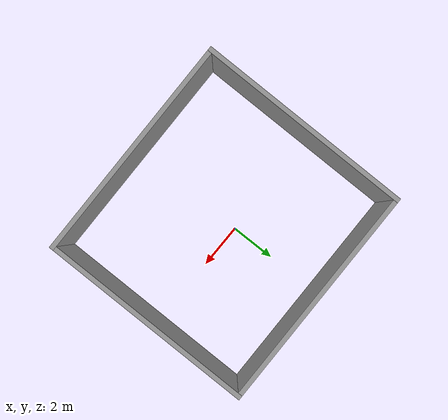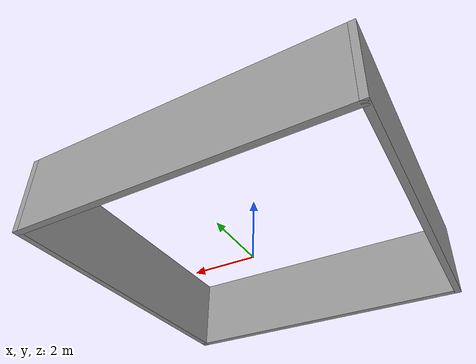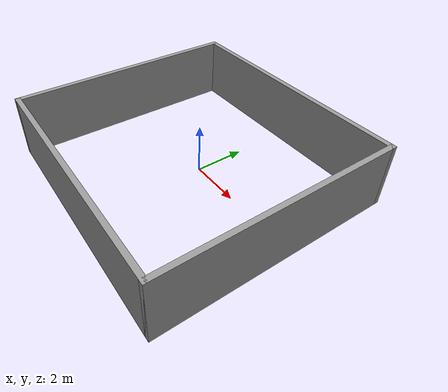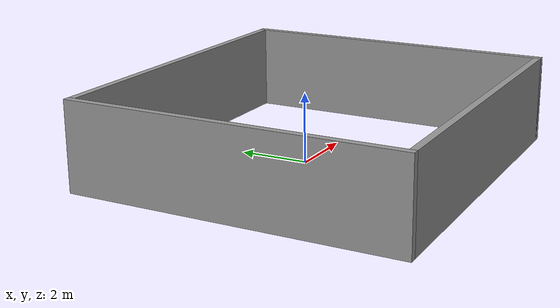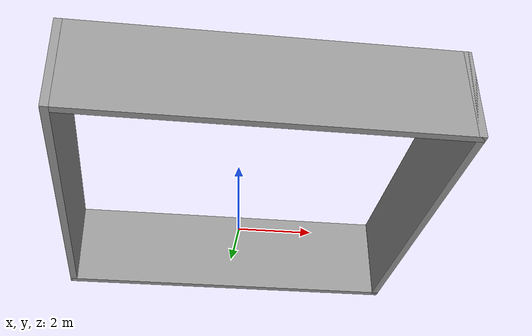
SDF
<?xml version='1.0'?>
<sdf version='1.4'>
  <model name='scene5.world'>
    <link name='Wall_0'>
      <collision name='Wall_0_Collision'>
        <geometry>
          <box>
            <size>9.41281 0.2 2.5</size>
          </box>
        </geometry>
        <pose>0 0 1.25 0 -0 0</pose>
      </collision>
      <visual name='Wall_0_Visual'>
        <pose>0 0 1.25 0 -0 0</pose>
        <geometry>
          <box>
            <size>9.41281 0.2 2.5</size>
          </box>
        </geometry>
        <material>
          <script>
            <uri>file://media/materials/scripts/gazebo.material</uri>
            <name>Gazebo/Grey</name>
          </script>
        </material>
      </visual>
      <velocity_decay>
        <linear>0</linear>
        <angular>0</angular>
      </velocity_decay>
      <pose>-4.78056 -0.464841 0 0 0 -1.5708</pose>
    </link>
    <link name='Wall_2'>
      <collision name='Wall_2_Collision'>
        <geometry>
          <box>
            <size>9.9235 0.2 2.5</size>
          </box>
        </geometry>
        <pose>0 0 1.25 0 -0 0</pose>
      </collision>
      <visual name='Wall_2_Visual'>
        <pose>0 0 1.25 0 -0 0</pose>
        <geometry>
          <box>
            <size>9.9235 0.2 2.5</size>
          </box>
        </geometry>
        <material>
          <script>
            <uri>file://media/materials/scripts/gazebo.material</uri>
            <name>Gazebo/Grey</name>
          </script>
        </material>
      </visual>
      <velocity_decay>
        <linear>0</linear>
        <angular>0</angular>
      </velocity_decay>
      <pose>0.120835 -5.07029 0 0 -0 0</pose>
    </link>
    <link name='Wall_3'>
      <collision name='Wall_3_Collision'>
        <geometry>
          <box>
            <size>9.41174 0.2 2.5</size>
          </box>
        </geometry>
        <pose>0 0 1.25 0 -0 0</pose>
      </collision>
      <visual name='Wall_3_Visual'>
        <pose>0 0 1.25 0 -0 0</pose>
        <geometry>
          <box>
            <size>9.41174 0.2 2.5</size>
          </box>
        </geometry>
        <material>
          <script>
            <uri>file://media/materials/scripts/gazebo.material</uri>
            <name>Gazebo/Grey</name>
          </script>
        </material>
      </visual>
      <velocity_decay>
        <linear>0</linear>
        <angular>0</angular>
      </velocity_decay>
      <pose>4.98258 -0.46442 0 0 -0 1.5708</pose>
    </link>
    <link name='Wall_4'>
      <collision name='Wall_4_Collision'>
        <geometry>
          <box>
            <size>9.9235 0.2 2.5</size>
          </box>
        </geometry>
        <pose>0 0 1.25 0 -0 0</pose>
      </collision>
      <visual name='Wall_4_Visual'>
        <pose>0 0 1.25 0 -0 0</pose>
        <geometry>
          <box>
            <size>9.9235 0.2 2.5</size>
          </box>
        </geometry>
        <material>
          <script>
            <uri>file://media/materials/scripts/gazebo.material</uri>
            <name>Gazebo/Grey</name>
          </script>
        </material>
      </visual>
      <velocity_decay>
        <linear>0</linear>
        <angular>0</angular>
      </velocity_decay>
      <pose>0.120835 4.14145 0 0 -0 3.14159</pose>
    </link>
    <static>1</static>
  </model>
</sdf>
